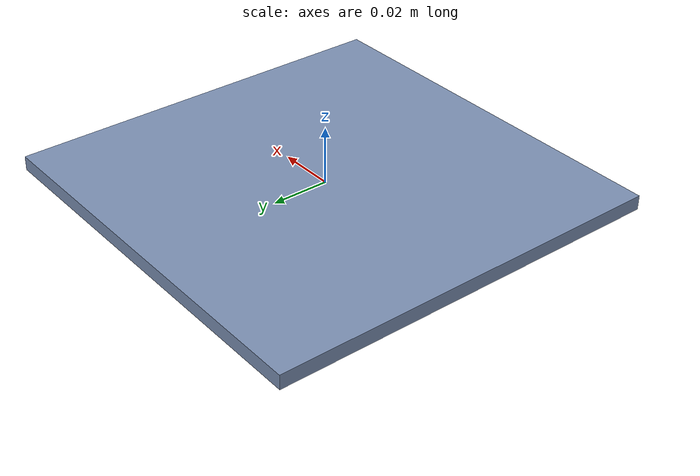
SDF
<sdf version="1.6">
  <model name="buffer">
    <static>true</static>
    <link name="link">
      <visual name="floor">
        <pose>0.000000 0.000000 0.000000 0 0 0.000000</pose>
        <geometry>
          <box>
            <size>0.140000 0.140000 0.005000</size>
          </box>
        </geometry>
        <material>
          <ambient>0.36 0.42 0.52 1</ambient>
          <diffuse>0.48 0.56 0.70 1</diffuse>
          <emissive>0.054400000000000004 0.055999999999999994 0.0576 1</emissive>
          <specular>0.12 0.12 0.12 1</specular>
        </material>
      </visual>
      <collision name="floor_collision"><pose>0.000000 0.000000 0.000000 0 0 0.000000</pose><geometry>
          <box>
            <size>0.140000 0.140000 0.005000</size>
          </box>
        </geometry></collision></link>
  </model>
</sdf>
